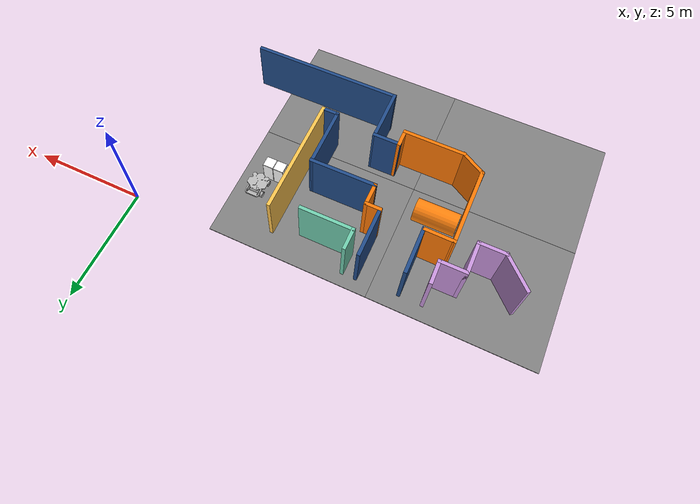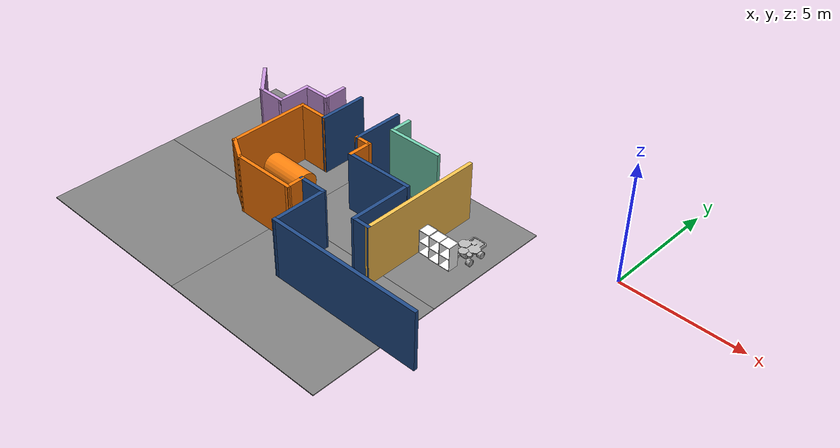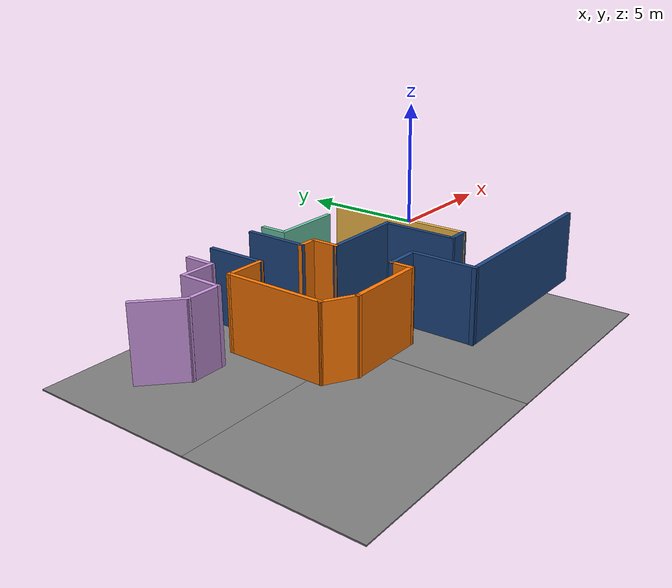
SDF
<sdf version="1.7">
 <world name="default">
  <model name="among_us_world">
   <pose>0.133216 -0.12311 0 0 -0 0</pose>
   <link name="Wall_145">
    <collision name="Wall_145_Collision">
     <geometry><box><size>5.25 0.15 2.5</size></box></geometry>
     <pose>0 0 1.25 0 -0 0</pose>
    </collision>
    <visual name="Wall_145_Visual">
     <pose>0 0 1.25 0 -0 0</pose>
     <geometry><box><size>5.25 0.15 2.5</size></box></geometry>
     <material>
      <ambient>1 0.764706 0.305882 1</ambient>
      <diffuse>1 0.764706 0.305882 1</diffuse>
      <specular>0.08 0.08 0.08 1</specular>
      <emissive>0 0 0 1</emissive>
      <pbr>
       <metal>
        <albedo_map>model://among_us_world/materials/textures/ceiling_tiled_255_195_78.jpg</albedo_map>
        <roughness>0.85</roughness>
        <metalness>0</metalness>
       </metal>
      </pbr>
     </material>
     <meta><layer>0</layer></meta>
    </visual>
    <pose>-6.21277 -3.45528 0 0 -0 1.5708</pose>
   </link>
   <link name="Wall_160">
    <collision name="Wall_160_Collision">
     <geometry><box><size>0.797757 0.15 2.5</size></box></geometry>
     <pose>0 0 1.25 0 -0 0</pose>
    </collision>
    <visual name="Wall_160_Visual">
     <pose>0 0 1.25 0 -0 0</pose>
     <geometry><box><size>0.797757 0.15 2.5</size></box></geometry>
     <material>
      <ambient>0.12549 0.290196 0.529412 1</ambient>
      <diffuse>0.12549 0.290196 0.529412 1</diffuse>
      <specular>0.08 0.08 0.08 1</specular>
      <emissive>0 0 0 1</emissive>
      <pbr>
       <metal>
        <albedo_map>model://asphalt_plane/materials/textures/tarmac.png</albedo_map>
        <roughness>0.85</roughness>
        <metalness>0</metalness>
       </metal>
      </pbr>
     </material>
     <meta><layer>0</layer></meta>
    </visual>
    <pose>-6.53682 -6.00509 0 0 -0 3.14101</pose>
   </link>
   <link name="Wall_161">
    <collision name="Wall_161_Collision">
     <geometry><box><size>2.70224 0.15 2.5</size></box></geometry>
     <pose>0 0 1.25 0 -0 0</pose>
    </collision>
    <visual name="Wall_161_Visual">
     <pose>0 0 1.25 0 -0 0</pose>
     <geometry><box><size>2.70224 0.15 2.5</size></box></geometry>
     <material>
      <ambient>0.12549 0.290196 0.529412 1</ambient>
      <diffuse>0.12549 0.290196 0.529412 1</diffuse>
      <specular>0.08 0.08 0.08 1</specular>
      <emissive>0 0 0 1</emissive>
      <pbr>
       <metal>
        <albedo_map>model://asphalt_plane/materials/textures/tarmac.png</albedo_map>
        <roughness>0.85</roughness>
        <metalness>0</metalness>
       </metal>
      </pbr>
     </material>
     <meta><layer>0</layer></meta>
    </visual>
    <pose>-6.87644 -4.72879 0 0 -0 1.5708</pose>
   </link>
   <link name="Wall_162">
    <collision name="Wall_162_Collision">
     <geometry><box><size>2.95229 0.15 2.5</size></box></geometry>
     <pose>0 0 1.25 0 -0 0</pose>
    </collision>
    <visual name="Wall_162_Visual">
     <pose>0 0 1.25 0 -0 0</pose>
     <geometry><box><size>2.95229 0.15 2.5</size></box></geometry>
     <material>
      <ambient>0.12549 0.290196 0.529412 1</ambient>
      <diffuse>0.12549 0.290196 0.529412 1</diffuse>
      <specular>0.08 0.08 0.08 1</specular>
      <emissive>0 0 0 1</emissive>
      <pbr>
       <metal>
        <albedo_map>model://asphalt_plane/materials/textures/tarmac.png</albedo_map>
        <roughness>0.85</roughness>
        <metalness>0</metalness>
       </metal>
      </pbr>
     </material>
     <meta><layer>0</layer></meta>
    </visual>
    <pose>-8.262 -3.46044 0 0 -0 -3.13604</pose>
   </link>
   <link name="Wall_163">
    <collision name="Wall_163_Collision">
     <geometry><box><size>1.04776 0.15 2.5</size></box></geometry>
     <pose>0 0 1.25 0 -0 0</pose>
    </collision>
    <visual name="Wall_163_Visual">
     <pose>0 0 1.25 0 -0 0</pose>
     <geometry><box><size>1.04776 0.15 2.5</size></box></geometry>
     <material>
      <ambient>0.996078 0.47451 0.0196078 1</ambient>
      <diffuse>0.996078 0.47451 0.0196078 1</diffuse>
      <specular>0.08 0.08 0.08 1</specular>
      <emissive>0 0 0 1</emissive>
      <pbr>
       <metal>
        <albedo_map>model://among_us_world/materials/textures/ceiling_tiled_254_121_5.jpg</albedo_map>
        <roughness>0.85</roughness>
        <metalness>0</metalness>
       </metal>
      </pbr>
     </material>
     <meta><layer>0</layer></meta>
    </visual>
    <pose>-9.66312 -3.00378 0 0 -0 1.5708</pose>
   </link>
   <link name="Wall_164">
    <collision name="Wall_164_Collision">
     <geometry><box><size>0.75 0.15 2.5</size></box></geometry>
     <pose>0 0 1.25 0 -0 0</pose>
    </collision>
    <visual name="Wall_164_Visual">
     <pose>0 0 1.25 0 -0 0</pose>
     <geometry><box><size>0.75 0.15 2.5</size></box></geometry>
     <material>
      <ambient>0.996078 0.47451 0.0196078 1</ambient>
      <diffuse>0.996078 0.47451 0.0196078 1</diffuse>
      <specular>0.08 0.08 0.08 1</specular>
      <emissive>0 0 0 1</emissive>
      <pbr>
       <metal>
        <albedo_map>model://among_us_world/materials/textures/ceiling_tiled_254_121_5.jpg</albedo_map>
        <roughness>0.85</roughness>
        <metalness>0</metalness>
       </metal>
      </pbr>
     </material>
     <meta><layer>0</layer></meta>
    </visual>
    <pose>-9.96312 -2.55491 0 0 -0 3.14159</pose>
   </link>
   <link name="Wall_165">
    <collision name="Wall_165_Collision">
     <geometry><box><size>2.25 0.15 2.5</size></box></geometry>
     <pose>0 0 1.25 0 -0 0</pose>
    </collision>
    <visual name="Wall_165_Visual">
     <pose>0 0 1.25 0 -0 0</pose>
     <geometry><box><size>2.25 0.15 2.5</size></box></geometry>
     <material>
      <ambient>0.12549 0.290196 0.529412 1</ambient>
      <diffuse>0.12549 0.290196 0.529412 1</diffuse>
      <specular>0.08 0.08 0.08 1</specular>
      <emissive>0 0 0 1</emissive>
      <pbr>
       <metal>
        <albedo_map>model://asphalt_plane/materials/textures/tarmac.png</albedo_map>
        <roughness>0.85</roughness>
        <metalness>0</metalness>
       </metal>
      </pbr>
     </material>
     <meta><layer>0</layer></meta>
    </visual>
    <pose>-10.2631 -1.50491 0 0 -0 1.5708</pose>
   </link>
   <link name="Wall_167">
    <collision name="Wall_167_Collision">
     <geometry><box><size>1 0.15 2.5</size></box></geometry>
     <pose>0 0 1.25 0 -0 0</pose>
    </collision>
    <visual name="Wall_167_Visual">
     <pose>0 0 1.25 0 -0 0</pose>
     <geometry><box><size>1 0.15 2.5</size></box></geometry>
     <material>
      <ambient>0.435294 0.796078 0.67451 1</ambient>
      <diffuse>0.435294 0.796078 0.67451 1</diffuse>
      <specular>0.08 0.08 0.08 1</specular>
      <emissive>0 0 0 1</emissive>
      <pbr>
       <metal>
        <albedo_map>model://among_us_world/materials/textures/ceiling_tiled_111_203_172.jpg</albedo_map>
        <roughness>0.85</roughness>
        <metalness>0</metalness>
       </metal>
      </pbr>
     </material>
     <meta><layer>0</layer></meta>
    </visual>
    <pose>-9.66312 -0.879906 0 0 -0 -1.5708</pose>
   </link>
   <link name="Wall_168">
    <collision name="Wall_168_Collision">
     <geometry><box><size>2.40666 0.15 2.5</size></box></geometry>
     <pose>0 0 1.25 0 -0 0</pose>
    </collision>
    <visual name="Wall_168_Visual">
     <pose>0 0 1.25 0 -0 0</pose>
     <geometry><box><size>2.40666 0.15 2.5</size></box></geometry>
     <material>
      <ambient>0.435294 0.796078 0.67451 1</ambient>
      <diffuse>0.435294 0.796078 0.67451 1</diffuse>
      <specular>0.08 0.08 0.08 1</specular>
      <emissive>0 0 0 1</emissive>
      <pbr>
       <metal>
        <albedo_map>model://among_us_world/materials/textures/ceiling_tiled_111_203_172.jpg</albedo_map>
        <roughness>0.85</roughness>
        <metalness>0</metalness>
       </metal>
      </pbr>
     </material>
     <meta><layer>0</layer></meta>
    </visual>
    <pose>-8.53479 -1.30491 0 0 -0 0</pose>
   </link>
   <link name="Wall_47">
    <collision name="Wall_47_Collision">
     <geometry><box><size>1.7065 0.15 2.5</size></box></geometry>
     <pose>0 0 1.25 0 -0 0</pose>
    </collision>
    <visual name="Wall_47_Visual">
     <pose>0 0 1.25 0 -0 0</pose>
     <geometry><box><size>1.7065 0.15 2.5</size></box></geometry>
     <material>
      <ambient>0.78 0.58 0.86 1</ambient>
      <diffuse>0.78 0.58 0.86 1</diffuse>
      <specular>0.08 0.08 0.08 1</specular>
      <emissive>0 0 0 1</emissive>
      <pbr>
       <metal>
        <albedo_map>model://among_us_world/materials/textures/ceiling_tiled_92_53_102.jpg</albedo_map>
        <roughness>0.85</roughness>
        <metalness>0</metalness>
       </metal>
      </pbr>
     </material>
     <meta><layer>0</layer></meta>
    </visual>
    <pose>-15.8858 -2.28678 0 0 -0 -0.771315</pose>
   </link>
   <link name="Wall_48">
    <collision name="Wall_48_Collision">
     <geometry><box><size>1.266 0.15 2.5</size></box></geometry>
     <pose>0 0 1.25 0 -0 0</pose>
    </collision>
    <visual name="Wall_48_Visual">
     <pose>0 0 1.25 0 -0 0</pose>
     <geometry><box><size>1.266 0.15 2.5</size></box></geometry>
     <material>
      <ambient>0.78 0.58 0.86 1</ambient>
      <diffuse>0.78 0.58 0.86 1</diffuse>
      <specular>0.08 0.08 0.08 1</specular>
      <emissive>0 0 0 1</emissive>
      <pbr>
       <metal>
        <albedo_map>model://among_us_world/materials/textures/ceiling_tiled_173_127_168.jpg</albedo_map>
        <roughness>0.85</roughness>
        <metalness>0</metalness>
       </metal>
      </pbr>
     </material>
     <meta><layer>0</layer></meta>
    </visual>
    <pose>-14.7698 -2.82928 0 0 -0 0</pose>
   </link>
   <link name="Wall_49">
    <collision name="Wall_49_Collision">
     <geometry><box><size>1.5 0.15 2.5</size></box></geometry>
     <pose>0 0 1.25 0 -0 0</pose>
    </collision>
    <visual name="Wall_49_Visual">
     <pose>0 0 1.25 0 -0 0</pose>
     <geometry><box><size>1.5 0.15 2.5</size></box></geometry>
     <material>
      <ambient>0.78 0.58 0.86 1</ambient>
      <diffuse>0.78 0.58 0.86 1</diffuse>
      <specular>0.08 0.08 0.08 1</specular>
      <emissive>0 0 0 1</emissive>
      <pbr>
       <metal>
        <albedo_map>model://among_us_world/materials/textures/ceiling_tiled_117_80_123.jpg</albedo_map>
        <roughness>0.85</roughness>
        <metalness>0</metalness>
       </metal>
      </pbr>
     </material>
     <meta><layer>0</layer></meta>
    </visual>
    <pose>-14.2118 -2.15428 0 0 -0 1.5708</pose>
   </link>
   <link name="Wall_50">
    <collision name="Wall_50_Collision">
     <geometry><box><size>1.25 0.15 2.5</size></box></geometry>
     <pose>0 0 1.25 0 -0 0</pose>
    </collision>
    <visual name="Wall_50_Visual">
     <pose>0 0 1.25 0 -0 0</pose>
     <geometry><box><size>1.25 0.15 2.5</size></box></geometry>
     <material>
      <ambient>0.78 0.58 0.86 1</ambient>
      <diffuse>0.78 0.58 0.86 1</diffuse>
      <specular>0.08 0.08 0.08 1</specular>
      <emissive>0 0 0 1</emissive>
      <pbr>
       <metal>
        <albedo_map>model://among_us_world/materials/textures/ceiling_tiled_117_80_123.jpg</albedo_map>
        <roughness>0.85</roughness>
        <metalness>0</metalness>
       </metal>
      </pbr>
     </material>
     <meta><layer>0</layer></meta>
    </visual>
    <pose>-13.6618 -1.47928 0 0 -0 0</pose>
   </link>
   <link name="Wall_51">
    <collision name="Wall_51_Collision">
     <geometry><box><size>1.07621 0.15 2.5</size></box></geometry>
     <pose>0 0 1.25 0 -0 0</pose>
    </collision>
    <visual name="Wall_51_Visual">
     <pose>0 0 1.25 0 -0 0</pose>
     <geometry><box><size>1.07621 0.15 2.5</size></box></geometry>
     <material>
      <ambient>0.78 0.58 0.86 1</ambient>
      <diffuse>0.78 0.58 0.86 1</diffuse>
      <specular>0.08 0.08 0.08 1</specular>
      <emissive>0 0 0 1</emissive>
      <pbr>
       <metal>
        <albedo_map>model://among_us_world/materials/textures/ceiling_tiled_117_80_123.jpg</albedo_map>
        <roughness>0.85</roughness>
        <metalness>0</metalness>
       </metal>
      </pbr>
     </material>
     <meta><layer>0</layer></meta>
    </visual>
    <pose>-13.1188 -1.01578 0 0 -0 1.5859</pose>
   </link>
   <link name="Wall_53">
    <collision name="Wall_53_Collision">
     <geometry><box><size>2.08956 0.15 2.5</size></box></geometry>
     <pose>0 0 1.25 0 -0 0</pose>
    </collision>
    <visual name="Wall_53_Visual">
     <pose>0 0 1.25 0 -0 0</pose>
     <geometry><box><size>2.08956 0.15 2.5</size></box></geometry>
     <material>
      <ambient>0.12549 0.290196 0.529412 1</ambient>
      <diffuse>0.12549 0.290196 0.529412 1</diffuse>
      <specular>0.08 0.08 0.08 1</specular>
      <emissive>0 0 0 1</emissive>
      <pbr>
       <metal>
        <albedo_map>model://asphalt_plane/materials/textures/tarmac.png</albedo_map>
        <roughness>0.85</roughness>
        <metalness>0</metalness>
       </metal>
      </pbr>
     </material>
     <meta><layer>0</layer></meta>
    </visual>
    <pose>-12.1122 -1.5246 0 0 -0 -1.56365</pose>
   </link>
   <link name="Wall_54">
    <collision name="Wall_54_Collision">
     <geometry><box><size>1.3912 0.15 2.5</size></box></geometry>
     <pose>0 0 1.25 0 -0 0</pose>
    </collision>
    <visual name="Wall_54_Visual">
     <pose>0 0 1.25 0 -0 0</pose>
     <geometry><box><size>1.3912 0.15 2.5</size></box></geometry>
     <material>
      <ambient>0.996078 0.47451 0.0196078 1</ambient>
      <diffuse>0.996078 0.47451 0.0196078 1</diffuse>
      <specular>0.08 0.08 0.08 1</specular>
      <emissive>0 0 0 1</emissive>
      <pbr>
       <metal>
        <albedo_map>model://among_us_world/materials/textures/ceiling_tiled_254_121_5.jpg</albedo_map>
        <roughness>0.85</roughness>
        <metalness>0</metalness>
       </metal>
      </pbr>
     </material>
     <meta><layer>0</layer></meta>
    </visual>
    <pose>-12.7414 -2.48657 0 0 -0 3.12906</pose>
   </link>
   <link name="Wall_55">
    <collision name="Wall_55_Collision">
     <geometry><box><size>3.5 0.15 2.5</size></box></geometry>
     <pose>0 0 1.25 0 -0 0</pose>
    </collision>
    <visual name="Wall_55_Visual">
     <pose>0 0 1.25 0 -0 0</pose>
     <geometry><box><size>3.5 0.15 2.5</size></box></geometry>
     <material>
      <ambient>0.996078 0.47451 0.0196078 1</ambient>
      <diffuse>0.996078 0.47451 0.0196078 1</diffuse>
      <specular>0.08 0.08 0.08 1</specular>
      <emissive>0 0 0 1</emissive>
      <pbr>
       <metal>
        <albedo_map>model://among_us_world/materials/textures/ceiling_tiled_254_121_5.jpg</albedo_map>
        <roughness>0.85</roughness>
        <metalness>0</metalness>
       </metal>
      </pbr>
     </material>
     <meta><layer>0</layer></meta>
    </visual>
    <pose>-13.3619 -4.15379 0 0 -0 -1.5708</pose>
   </link>
   <link name="Wall_56">
    <collision name="Wall_56_Collision">
     <geometry><box><size>1.25 0.15 2.5</size></box></geometry>
     <pose>0 0 1.25 0 -0 0</pose>
    </collision>
    <visual name="Wall_56_Visual">
     <pose>0 0 1.25 0 -0 0</pose>
     <geometry><box><size>1.25 0.15 2.5</size></box></geometry>
     <material>
      <ambient>0.996078 0.47451 0.0196078 1</ambient>
      <diffuse>0.996078 0.47451 0.0196078 1</diffuse>
      <specular>0.08 0.08 0.08 1</specular>
      <emissive>0 0 0 1</emissive>
      <pbr>
       <metal>
        <albedo_map>model://among_us_world/materials/textures/ceiling_tiled_254_121_5.jpg</albedo_map>
        <roughness>0.85</roughness>
        <metalness>0</metalness>
       </metal>
      </pbr>
     </material>
     <meta><layer>0</layer></meta>
    </visual>
    <pose>-12.8856 -6.10379 0 0 -0 -0.523599</pose>
   </link>
   <link name="Wall_57">
    <collision name="Wall_57_Collision">
     <geometry><box><size>2.75 0.15 2.5</size></box></geometry>
     <pose>0 0 1.25 0 -0 0</pose>
    </collision>
    <visual name="Wall_57_Visual">
     <pose>0 0 1.25 0 -0 0</pose>
     <geometry><box><size>2.75 0.15 2.5</size></box></geometry>
     <material>
      <ambient>0.996078 0.47451 0.0196078 1</ambient>
      <diffuse>0.996078 0.47451 0.0196078 1</diffuse>
      <specular>0.08 0.08 0.08 1</specular>
      <emissive>0 0 0 1</emissive>
      <pbr>
       <metal>
        <albedo_map>model://among_us_world/materials/textures/ceiling_tiled_254_121_5.jpg</albedo_map>
        <roughness>0.85</roughness>
        <metalness>0</metalness>
       </metal>
      </pbr>
     </material>
     <meta><layer>0</layer></meta>
    </visual>
    <pose>-11.1093 -6.37879 0 0 -0 0</pose>
   </link>
   <link name="Wall_58">
    <collision name="Wall_58_Collision">
     <geometry><box><size>0.828826 0.15 2.5</size></box></geometry>
     <pose>0 0 1.25 0 -0 0</pose>
    </collision>
    <visual name="Wall_58_Visual">
     <pose>0 0 1.25 0 -0 0</pose>
     <geometry><box><size>0.828826 0.15 2.5</size></box></geometry>
     <material>
      <ambient>0.996078 0.47451 0.0196078 1</ambient>
      <diffuse>0.996078 0.47451 0.0196078 1</diffuse>
      <specular>0.08 0.08 0.08 1</specular>
      <emissive>0 0 0 1</emissive>
      <pbr><metal><roughness>0.85</roughness><metalness>0</metalness></metal></pbr>
     </material>
     <meta><layer>0</layer></meta>
    </visual>
    <pose>-9.81221 -6.03984 0 0 -0 1.57942</pose>
   </link>
   <link name="Wall_59">
    <collision name="Wall_59_Collision">
     <geometry><box><size>1.25 0.15 2.5</size></box></geometry>
     <pose>0 0 1.25 0 -0 0</pose>
    </collision>
    <visual name="Wall_59_Visual">
     <pose>0 0 1.25 0 -0 0</pose>
     <geometry><box><size>1.25 0.15 2.5</size></box></geometry>
     <material>
      <ambient>0.12549 0.290196 0.529412 1</ambient>
      <diffuse>0.12549 0.290196 0.529412 1</diffuse>
      <specular>0.08 0.08 0.08 1</specular>
      <emissive>0 0 0 1</emissive>
      <pbr>
       <metal>
        <albedo_map>model://asphalt_plane/materials/textures/tarmac.png</albedo_map>
        <roughness>0.85</roughness>
        <metalness>0</metalness>
       </metal>
      </pbr>
     </material>
     <meta><layer>0</layer></meta>
    </visual>
    <pose>-9.27098 -5.70088 0 0 -0 0</pose>
   </link>
   <link name="Wall_60">
    <collision name="Wall_60_Collision">
     <geometry><box><size>2.3556 0.15 2.5</size></box></geometry>
     <pose>0 0 1.25 0 -0 0</pose>
    </collision>
    <visual name="Wall_60_Visual">
     <pose>0 0 1.25 0 -0 0</pose>
     <geometry><box><size>2.3556 0.15 2.5</size></box></geometry>
     <material>
      <ambient>0.12549 0.290196 0.529412 1</ambient>
      <diffuse>0.12549 0.290196 0.529412 1</diffuse>
      <specular>0.08 0.08 0.08 1</specular>
      <emissive>0 0 0 1</emissive>
      <pbr>
       <metal>
        <albedo_map>model://asphalt_plane/materials/textures/tarmac.png</albedo_map>
        <roughness>0.85</roughness>
        <metalness>0</metalness>
       </metal>
      </pbr>
     </material>
     <meta><layer>0</layer></meta>
    </visual>
    <pose>-8.71756 -6.80367 0 0 -0 -1.56769</pose>
   </link>
   <link name="Wall_61">
    <collision name="Wall_61_Collision">
     <geometry><box><size>6.57551 0.15 2.5</size></box></geometry>
     <pose>0 0 1.25 0 -0 0</pose>
    </collision>
    <visual name="Wall_61_Visual">
     <pose>0 0 1.25 0 -0 0</pose>
     <geometry><box><size>6.57551 0.15 2.5</size></box></geometry>
     <material>
      <ambient>0.12549 0.290196 0.529412 1</ambient>
      <diffuse>0.12549 0.290196 0.529412 1</diffuse>
      <specular>0.08 0.08 0.08 1</specular>
      <emissive>0 0 0 1</emissive>
      <pbr>
       <metal>
        <albedo_map>model://asphalt_plane/materials/textures/tarmac.png</albedo_map>
        <roughness>0.85</roughness>
        <metalness>0</metalness>
       </metal>
      </pbr>
     </material>
     <meta><layer>0</layer></meta>
    </visual>
    <pose>-5.51319 -7.89091 0 0 -0 0.004842</pose>
   </link>
   <static>1</static>
  </model>
  <model name="cabinet_clone">
   <static>1</static>
   <link name="cabinet_bottom_plate">
    <inertial>
     <pose>0 0 -1 0 -0 0</pose>
     <inertia><ixx>2.05</ixx><ixy>0</ixy><ixz>0</ixz><iyy>2.05</iyy><iyz>0</iyz><izz>2.05</izz></inertia>
     <mass>25</mass>
    </inertial>
    <collision name="cabinet_bottom_plate_geom">
     <pose>0 0 0.01 0 -0 0</pose>
     <geometry><box><size>0.45 0.45 0.02</size></box></geometry>
    </collision>
    <visual name="cabinet_bottom_plate_geom_visual">
     <pose>0 0 0.01 0 -0 0</pose>
     <geometry><box><size>0.45 0.45 0.02</size></box></geometry>
     <material>
      <ambient>1 1 1 1</ambient>
      <diffuse>1 1 1 1</diffuse>
      <specular>0.08 0.08 0.08 1</specular>
      <emissive>0 0 0 1</emissive>
      <pbr>
       <metal>
        <albedo_map>model://among_us_world/materials/textures/legacy_wood.jpg</albedo_map>
        <roughness>0.62</roughness>
        <metalness>0</metalness>
       </metal>
      </pbr>
     </material>
    </visual>
    <collision name="cabinet_bottom_plate_geom_cabinet_back_plate">
     <pose>0.235 0 0.51 0 -0 0</pose>
     <geometry><box><size>0.02 0.45 1.02</size></box></geometry>
    </collision>
    <visual name="cabinet_bottom_plate_geom_cabinet_back_plate_visual">
     <pose>0.235 0 0.51 0 -0 0</pose>
     <geometry><box><size>0.02 0.45 1.02</size></box></geometry>
     <material>
      <ambient>1 1 1 1</ambient>
      <diffuse>1 1 1 1</diffuse>
      <specular>0.08 0.08 0.08 1</specular>
      <emissive>0 0 0 1</emissive>
      <pbr>
       <metal>
        <albedo_map>model://among_us_world/materials/textures/legacy_wood.jpg</albedo_map>
        <roughness>0.62</roughness>
        <metalness>0</metalness>
       </metal>
      </pbr>
     </material>
    </visual>
    <collision name="cabinet_bottom_plate_geom_cabinet_left_plate">
     <pose>0 0.235 0.51 0 -0 0</pose>
     <geometry><box><size>0.45 0.02 1.02</size></box></geometry>
    </collision>
    <visual name="cabinet_bottom_plate_geom_cabinet_left_plate_visual">
     <pose>0 0.235 0.51 0 -0 0</pose>
     <geometry><box><size>0.45 0.02 1.02</size></box></geometry>
     <material>
      <ambient>1 1 1 1</ambient>
      <diffuse>1 1 1 1</diffuse>
      <specular>0.08 0.08 0.08 1</specular>
      <emissive>0 0 0 1</emissive>
      <pbr>
       <metal>
        <albedo_map>model://among_us_world/materials/textures/legacy_wood.jpg</albedo_map>
        <roughness>0.62</roughness>
        <metalness>0</metalness>
       </metal>
      </pbr>
     </material>
    </visual>
    <collision name="cabinet_bottom_plate_geom_cabinet_middle_plate">
     <pose>0 0 0.51 0 -0 0</pose>
     <geometry><box><size>0.45 0.45 0.02</size></box></geometry>
    </collision>
    <visual name="cabinet_bottom_plate_geom_cabinet_middle_plate_visual">
     <pose>0 0 0.51 0 -0 0</pose>
     <geometry><box><size>0.45 0.45 0.02</size></box></geometry>
     <material>
      <ambient>1 1 1 1</ambient>
      <diffuse>1 1 1 1</diffuse>
      <specular>0.08 0.08 0.08 1</specular>
      <emissive>0 0 0 1</emissive>
      <pbr>
       <metal>
        <albedo_map>model://among_us_world/materials/textures/legacy_wood.jpg</albedo_map>
        <roughness>0.62</roughness>
        <metalness>0</metalness>
       </metal>
      </pbr>
     </material>
    </visual>
    <collision name="cabinet_bottom_plate_geom_cabinet_right_plate">
     <pose>0 -0.235 0.51 0 -0 0</pose>
     <geometry><box><size>0.45 0.02 1.02</size></box></geometry>
    </collision>
    <visual name="cabinet_bottom_plate_geom_cabinet_right_plate_visual">
     <pose>0 -0.235 0.51 0 -0 0</pose>
     <geometry><box><size>0.45 0.02 1.02</size></box></geometry>
     <material>
      <ambient>1 1 1 1</ambient>
      <diffuse>1 1 1 1</diffuse>
      <specular>0.08 0.08 0.08 1</specular>
      <emissive>0 0 0 1</emissive>
      <pbr>
       <metal>
        <albedo_map>model://among_us_world/materials/textures/legacy_wood.jpg</albedo_map>
        <roughness>0.62</roughness>
        <metalness>0</metalness>
       </metal>
      </pbr>
     </material>
    </visual>
    <collision name="cabinet_bottom_plate_geom_cabinet_top_plate">
     <pose>0 0 1.01 0 -0 0</pose>
     <geometry><box><size>0.45 0.45 0.02</size></box></geometry>
    </collision>
    <visual name="cabinet_bottom_plate_geom_cabinet_top_plate_visual">
     <pose>0 0 1.01 0 -0 0</pose>
     <geometry><box><size>0.45 0.45 0.02</size></box></geometry>
     <material>
      <ambient>1 1 1 1</ambient>
      <diffuse>1 1 1 1</diffuse>
      <specular>0.08 0.08 0.08 1</specular>
      <emissive>0 0 0 1</emissive>
      <pbr>
       <metal>
        <albedo_map>model://among_us_world/materials/textures/legacy_wood.jpg</albedo_map>
        <roughness>0.62</roughness>
        <metalness>0</metalness>
       </metal>
      </pbr>
     </material>
    </visual>
   </link>
   <pose>-5.25916 -3.50994 0 0 -0 1.57</pose>
  </model>
  <model name="cabinet_clone_0">
   <static>1</static>
   <link name="cabinet_bottom_plate">
    <inertial>
     <pose>0 0 -1 0 -0 0</pose>
     <inertia><ixx>2.05</ixx><ixy>0</ixy><ixz>0</ixz><iyy>2.05</iyy><iyz>0</iyz><izz>2.05</izz></inertia>
     <mass>25</mass>
    </inertial>
    <collision name="cabinet_bottom_plate_geom">
     <pose>0 0 0.01 0 -0 0</pose>
     <geometry><box><size>0.45 0.45 0.02</size></box></geometry>
    </collision>
    <visual name="cabinet_bottom_plate_geom_visual">
     <pose>0 0 0.01 0 -0 0</pose>
     <geometry><box><size>0.45 0.45 0.02</size></box></geometry>
     <material>
      <ambient>1 1 1 1</ambient>
      <diffuse>1 1 1 1</diffuse>
      <specular>0.08 0.08 0.08 1</specular>
      <emissive>0 0 0 1</emissive>
      <pbr>
       <metal>
        <albedo_map>model://among_us_world/materials/textures/legacy_wood.jpg</albedo_map>
        <roughness>0.62</roughness>
        <metalness>0</metalness>
       </metal>
      </pbr>
     </material>
    </visual>
    <collision name="cabinet_bottom_plate_geom_cabinet_back_plate">
     <pose>0.235 0 0.51 0 -0 0</pose>
     <geometry><box><size>0.02 0.45 1.02</size></box></geometry>
    </collision>
    <visual name="cabinet_bottom_plate_geom_cabinet_back_plate_visual">
     <pose>0.235 0 0.51 0 -0 0</pose>
     <geometry><box><size>0.02 0.45 1.02</size></box></geometry>
     <material>
      <ambient>1 1 1 1</ambient>
      <diffuse>1 1 1 1</diffuse>
      <specular>0.08 0.08 0.08 1</specular>
      <emissive>0 0 0 1</emissive>
      <pbr>
       <metal>
        <albedo_map>model://among_us_world/materials/textures/legacy_wood.jpg</albedo_map>
        <roughness>0.62</roughness>
        <metalness>0</metalness>
       </metal>
      </pbr>
     </material>
    </visual>
    <collision name="cabinet_bottom_plate_geom_cabinet_left_plate">
     <pose>0 0.235 0.51 0 -0 0</pose>
     <geometry><box><size>0.45 0.02 1.02</size></box></geometry>
    </collision>
    <visual name="cabinet_bottom_plate_geom_cabinet_left_plate_visual">
     <pose>0 0.235 0.51 0 -0 0</pose>
     <geometry><box><size>0.45 0.02 1.02</size></box></geometry>
     <material>
      <ambient>1 1 1 1</ambient>
      <diffuse>1 1 1 1</diffuse>
      <specular>0.08 0.08 0.08 1</specular>
      <emissive>0 0 0 1</emissive>
      <pbr>
       <metal>
        <albedo_map>model://among_us_world/materials/textures/legacy_wood.jpg</albedo_map>
        <roughness>0.62</roughness>
        <metalness>0</metalness>
       </metal>
      </pbr>
     </material>
    </visual>
    <collision name="cabinet_bottom_plate_geom_cabinet_middle_plate">
     <pose>0 0 0.51 0 -0 0</pose>
     <geometry><box><size>0.45 0.45 0.02</size></box></geometry>
    </collision>
    <visual name="cabinet_bottom_plate_geom_cabinet_middle_plate_visual">
     <pose>0 0 0.51 0 -0 0</pose>
     <geometry><box><size>0.45 0.45 0.02</size></box></geometry>
     <material>
      <ambient>1 1 1 1</ambient>
      <diffuse>1 1 1 1</diffuse>
      <specular>0.08 0.08 0.08 1</specular>
      <emissive>0 0 0 1</emissive>
      <pbr>
       <metal>
        <albedo_map>model://among_us_world/materials/textures/legacy_wood.jpg</albedo_map>
        <roughness>0.62</roughness>
        <metalness>0</metalness>
       </metal>
      </pbr>
     </material>
    </visual>
    <collision name="cabinet_bottom_plate_geom_cabinet_right_plate">
     <pose>0 -0.235 0.51 0 -0 0</pose>
     <geometry><box><size>0.45 0.02 1.02</size></box></geometry>
    </collision>
    <visual name="cabinet_bottom_plate_geom_cabinet_right_plate_visual">
     <pose>0 -0.235 0.51 0 -0 0</pose>
     <geometry><box><size>0.45 0.02 1.02</size></box></geometry>
     <material>
      <ambient>1 1 1 1</ambient>
      <diffuse>1 1 1 1</diffuse>
      <specular>0.08 0.08 0.08 1</specular>
      <emissive>0 0 0 1</emissive>
      <pbr>
       <metal>
        <albedo_map>model://among_us_world/materials/textures/legacy_wood.jpg</albedo_map>
        <roughness>0.62</roughness>
        <metalness>0</metalness>
       </metal>
      </pbr>
     </material>
    </visual>
    <collision name="cabinet_bottom_plate_geom_cabinet_top_plate">
     <pose>0 0 1.01 0 -0 0</pose>
     <geometry><box><size>0.45 0.45 0.02</size></box></geometry>
    </collision>
    <visual name="cabinet_bottom_plate_geom_cabinet_top_plate_visual">
     <pose>0 0 1.01 0 -0 0</pose>
     <geometry><box><size>0.45 0.45 0.02</size></box></geometry>
     <material>
      <ambient>1 1 1 1</ambient>
      <diffuse>1 1 1 1</diffuse>
      <specular>0.08 0.08 0.08 1</specular>
      <emissive>0 0 0 1</emissive>
      <pbr>
       <metal>
        <albedo_map>model://among_us_world/materials/textures/legacy_wood.jpg</albedo_map>
        <roughness>0.62</roughness>
        <metalness>0</metalness>
       </metal>
      </pbr>
     </material>
    </visual>
   </link>
   <pose>-4.77375 -3.5118 0 0 -0 1.57</pose>
  </model>
  <model name="mars_rover">
   <static>1</static>
   <link name="link">
    <collision name="solar_panel_collision">
     <pose>0 -0.06945 0.47293 0 -0 0</pose>
     <geometry><box><size>0.87974 0.8821 0.02602</size></box></geometry>
    </collision>
    <collision name="chassis_collision">
     <pose>0 -0.05 0.31475 0 -0 0</pose>
     <geometry><box><size>0.49522 0.67401 0.28915</size></box></geometry>
    </collision>
    <collision name="rear_left_bumper_collision">
     <pose>0.30107 0.3835 0.38976 0 -0 0</pose>
     <geometry><box><size>0.04442 0.38897 0.07918</size></box></geometry>
    </collision>
    <collision name="rear_right_bumper_collision">
     <pose>-0.30107 0.3835 0.38976 0 -0 0</pose>
     <geometry><box><size>0.04442 0.38897 0.07918</size></box></geometry>
    </collision>
    <collision name="rear_bumper_collision">
     <pose>0 0.59414 0.38976 0 -0 0</pose>
     <geometry><box><size>0.56656 0.04442 0.07918</size></box></geometry>
    </collision>
    <collision name="bin_back_panel_collision">
     <pose>0 0.47 0.32114 0.69137 -0 0</pose>
     <geometry><box><size>0.43774 0.212366 0.05173</size></box></geometry>
    </collision>
    <collision name="bin_left_panel_collision1">
     <pose>0.22615 0.32897 0.33193 0 -0 0</pose>
     <geometry><box><size>0.01116 0.19338 0.16304</size></box></geometry>
    </collision>
    <collision name="bin_left_panel_collision2">
     <pose>0.22615 0.471 0.39308 0 -0 0</pose>
     <geometry><box><size>0.01116 0.15 0.04</size></box></geometry>
    </collision>
    <collision name="bin_left_panel_collision3">
     <pose>0.22615 0.45 0.35308 0 -0 0</pose>
     <geometry><box><size>0.01116 0.15 0.04</size></box></geometry>
    </collision>
    <collision name="bin_left_panel_collision4">
     <pose>0.22615 0.39308 0.31308 0 -0 0</pose>
     <geometry><box><size>0.01116 0.15 0.04</size></box></geometry>
    </collision>
    <collision name="bin_right_panel_collision1">
     <pose>-0.22615 0.32897 0.33193 0 -0 0</pose>
     <geometry><box><size>0.01116 0.19338 0.16304</size></box></geometry>
    </collision>
    <collision name="bin_right_panel_collision2">
     <pose>-0.22615 0.471 0.39308 0 -0 0</pose>
     <geometry><box><size>0.01116 0.15 0.04</size></box></geometry>
    </collision>
    <collision name="bin_right_panel_collision3">
     <pose>-0.22615 0.45 0.35308 0 -0 0</pose>
     <geometry><box><size>0.01116 0.15 0.04</size></box></geometry>
    </collision>
    <collision name="bin_right_panel_collision4">
     <pose>-0.22615 0.39308 0.31308 0 -0 0</pose>
     <geometry><box><size>0.01116 0.15 0.04</size></box></geometry>
    </collision>
    <collision name="bin_front_panel_collision">
     <pose>0 0.30047 0.32114 2.26207 -0 0</pose>
     <geometry><box><size>0.43774 0.212366 0.05173</size></box></geometry>
    </collision>
    <collision name="front_left_wheel_collision">
     <pose>0.31103 -0.32115 0.1358 1.5707 0 1.5707</pose>
     <geometry><cylinder><radius>0.1358</radius><length>0.1641</length></cylinder></geometry>
    </collision>
    <collision name="front_right_wheel_collision">
     <pose>-0.31103 -0.32115 0.1358 1.5707 0 1.5707</pose>
     <geometry><cylinder><radius>0.1358</radius><length>0.1641</length></cylinder></geometry>
    </collision>
    <collision name="rear_left_wheel_collision">
     <pose>0.31103 0.28049 0.1358 1.5707 0 1.5707</pose>
     <geometry><cylinder><radius>0.1358</radius><length>0.1641</length></cylinder></geometry>
    </collision>
    <collision name="rear_right_wheel_collision">
     <pose>-0.31103 0.28049 0.1358 1.5707 0 1.5707</pose>
     <geometry><cylinder><radius>0.1358</radius><length>0.1641</length></cylinder></geometry>
    </collision>
    <visual name="visual">
     <geometry><mesh><uri>model://mars_rover/meshes/rover.dae</uri></mesh></geometry>
    </visual>
   </link>
   <pose>-4.55317 -2.65606 0 0 -0 0</pose>
  </model>
  <model name="cabinet_clone_0_clone">
   <static>1</static>
   <link name="cabinet_bottom_plate">
    <inertial>
     <pose>0 0 -1 0 -0 0</pose>
     <inertia><ixx>2.05</ixx><ixy>0</ixy><ixz>0</ixz><iyy>2.05</iyy><iyz>0</iyz><izz>2.05</izz></inertia>
     <mass>25</mass>
    </inertial>
    <collision name="cabinet_bottom_plate_geom">
     <pose>0 0 0.01 0 -0 0</pose>
     <geometry><box><size>0.45 0.45 0.02</size></box></geometry>
    </collision>
    <visual name="cabinet_bottom_plate_geom_visual">
     <pose>0 0 0.01 0 -0 0</pose>
     <geometry><box><size>0.45 0.45 0.02</size></box></geometry>
     <material>
      <ambient>1 1 1 1</ambient>
      <diffuse>1 1 1 1</diffuse>
      <specular>0.08 0.08 0.08 1</specular>
      <emissive>0 0 0 1</emissive>
      <pbr>
       <metal>
        <albedo_map>model://among_us_world/materials/textures/legacy_wood.jpg</albedo_map>
        <roughness>0.62</roughness>
        <metalness>0</metalness>
       </metal>
      </pbr>
     </material>
    </visual>
    <collision name="cabinet_bottom_plate_geom_cabinet_back_plate">
     <pose>0.235 0 0.51 0 -0 0</pose>
     <geometry><box><size>0.02 0.45 1.02</size></box></geometry>
    </collision>
    <visual name="cabinet_bottom_plate_geom_cabinet_back_plate_visual">
     <pose>0.235 0 0.51 0 -0 0</pose>
     <geometry><box><size>0.02 0.45 1.02</size></box></geometry>
     <material>
      <ambient>1 1 1 1</ambient>
      <diffuse>1 1 1 1</diffuse>
      <specular>0.08 0.08 0.08 1</specular>
      <emissive>0 0 0 1</emissive>
      <pbr>
       <metal>
        <albedo_map>model://among_us_world/materials/textures/legacy_wood.jpg</albedo_map>
        <roughness>0.62</roughness>
        <metalness>0</metalness>
       </metal>
      </pbr>
     </material>
    </visual>
    <collision name="cabinet_bottom_plate_geom_cabinet_left_plate">
     <pose>0 0.235 0.51 0 -0 0</pose>
     <geometry><box><size>0.45 0.02 1.02</size></box></geometry>
    </collision>
    <visual name="cabinet_bottom_plate_geom_cabinet_left_plate_visual">
     <pose>0 0.235 0.51 0 -0 0</pose>
     <geometry><box><size>0.45 0.02 1.02</size></box></geometry>
     <material>
      <ambient>1 1 1 1</ambient>
      <diffuse>1 1 1 1</diffuse>
      <specular>0.08 0.08 0.08 1</specular>
      <emissive>0 0 0 1</emissive>
      <pbr>
       <metal>
        <albedo_map>model://among_us_world/materials/textures/legacy_wood.jpg</albedo_map>
        <roughness>0.62</roughness>
        <metalness>0</metalness>
       </metal>
      </pbr>
     </material>
    </visual>
    <collision name="cabinet_bottom_plate_geom_cabinet_middle_plate">
     <pose>0 0 0.51 0 -0 0</pose>
     <geometry><box><size>0.45 0.45 0.02</size></box></geometry>
    </collision>
    <visual name="cabinet_bottom_plate_geom_cabinet_middle_plate_visual">
     <pose>0 0 0.51 0 -0 0</pose>
     <geometry><box><size>0.45 0.45 0.02</size></box></geometry>
     <material>
      <ambient>1 1 1 1</ambient>
      <diffuse>1 1 1 1</diffuse>
      <specular>0.08 0.08 0.08 1</specular>
      <emissive>0 0 0 1</emissive>
      <pbr>
       <metal>
        <albedo_map>model://among_us_world/materials/textures/legacy_wood.jpg</albedo_map>
        <roughness>0.62</roughness>
        <metalness>0</metalness>
       </metal>
      </pbr>
     </material>
    </visual>
    <collision name="cabinet_bottom_plate_geom_cabinet_right_plate">
     <pose>0 -0.235 0.51 0 -0 0</pose>
     <geometry><box><size>0.45 0.02 1.02</size></box></geometry>
    </collision>
    <visual name="cabinet_bottom_plate_geom_cabinet_right_plate_visual">
     <pose>0 -0.235 0.51 0 -0 0</pose>
     <geometry><box><size>0.45 0.02 1.02</size></box></geometry>
     <material>
      <ambient>1 1 1 1</ambient>
      <diffuse>1 1 1 1</diffuse>
      <specular>0.08 0.08 0.08 1</specular>
      <emissive>0 0 0 1</emissive>
      <pbr>
       <metal>
        <albedo_map>model://among_us_world/materials/textures/legacy_wood.jpg</albedo_map>
        <roughness>0.62</roughness>
        <metalness>0</metalness>
       </metal>
      </pbr>
     </material>
    </visual>
    <collision name="cabinet_bottom_plate_geom_cabinet_top_plate">
     <pose>0 0 1.01 0 -0 0</pose>
     <geometry><box><size>0.45 0.45 0.02</size></box></geometry>
    </collision>
    <visual name="cabinet_bottom_plate_geom_cabinet_top_plate_visual">
     <pose>0 0 1.01 0 -0 0</pose>
     <geometry><box><size>0.45 0.45 0.02</size></box></geometry>
     <material>
      <ambient>1 1 1 1</ambient>
      <diffuse>1 1 1 1</diffuse>
      <specular>0.08 0.08 0.08 1</specular>
      <emissive>0 0 0 1</emissive>
      <pbr>
       <metal>
        <albedo_map>model://among_us_world/materials/textures/legacy_wood.jpg</albedo_map>
        <roughness>0.62</roughness>
        <metalness>0</metalness>
       </metal>
      </pbr>
     </material>
    </visual>
   </link>
   <pose>-5.75867 -3.48219 0 0 -0 1.57</pose>
  </model>
  <model name="orange_cylinder_clone_clone">
   <link name="link_0">
    <inertial>
     <mass>1</mass>
     <inertia><ixx>0.145833</ixx><ixy>0</ixy><ixz>0</ixz><iyy>0.145833</iyy><iyz>0</iyz><izz>0.125</izz></inertia>
    </inertial>
    <visual name="visual">
     <geometry><cylinder><radius>0.5</radius><length>1.88443</length></cylinder></geometry>
     <material>
      <ambient>1 0.5088 0.0468 1</ambient>
      <diffuse>1 0.5088 0.0468 1</diffuse>
      <specular>0.08 0.08 0.08 1</specular>
      <emissive>0 0 0 1</emissive>
      <pbr><metal><roughness>0.75</roughness><metalness>0</metalness></metal></pbr>
     </material>
    </visual>
    <collision name="collision">
     <geometry><cylinder><radius>0.5</radius><length>1.88443</length></cylinder></geometry>
     <surface>
      <friction>
       <ode><mu>1</mu><mu2>1</mu2><fdir1>0 0 0</fdir1><slip1>0</slip1><slip2>0</slip2></ode>
       <torsional>
        <coefficient>1</coefficient>
        <patch_radius>0</patch_radius>
        <surface_radius>0</surface_radius>
        <use_patch_radius>1</use_patch_radius>
        <ode><slip>0</slip></ode>
       </torsional>
      </friction>
      <bounce><restitution_coefficient>0</restitution_coefficient><threshold>1e+06</threshold></bounce>
      <contact>
       <collide_without_contact>0</collide_without_contact>
       <collide_without_contact_bitmask>1</collide_without_contact_bitmask>
       <collide_bitmask>1</collide_bitmask>
       <ode>
        <soft_cfm>0</soft_cfm>
        <soft_erp>0.2</soft_erp>
        <kp>1e+13</kp>
        <kd>1</kd>
        <max_vel>0.01</max_vel>
        <min_depth>0</min_depth>
       </ode>
       <bullet>
        <split_impulse>1</split_impulse>
        <split_impulse_penetration_threshold>-0.01</split_impulse_penetration_threshold>
        <soft_cfm>0</soft_cfm>
        <soft_erp>0.2</soft_erp>
        <kp>1e+13</kp>
        <kd>1</kd>
       </bullet>
      </contact>
     </surface>
    </collision>
   </link>
   <static>0</static>
   <pose>-12.1704 -4.30471 0.589029 -2.05384 1.53534 -2.05993</pose>
  </model>
  <model name="asphalt_tile_00_00">
   <static>1</static>
   <pose>-14.400 -8.250 -0.020 0 -0 0</pose>
   <link name="link">
    <collision name="collision"><geometry><box><size>7.200 5.500 0.040</size></box></geometry></collision>
    <visual name="visual">
     <cast_shadows>0</cast_shadows>
     <geometry><box><size>7.200 5.500 0.040</size></box></geometry>
     <material>
      <ambient>0.5 0.5 0.5 1</ambient>
      <diffuse>0.5 0.5 0.5 1</diffuse>
      <specular>0.2 0.2 0.2 1</specular>
      <emissive>0 0 0 1</emissive>
      <pbr>
       <metal>
        <albedo_map>model://asphalt_plane/materials/textures/tarmac.png</albedo_map>
        <roughness>0.85</roughness>
        <metalness>0</metalness>
       </metal>
      </pbr>
     </material>
    </visual>
   </link>
  </model>
  <model name="asphalt_tile_00_01">
   <static>1</static>
   <pose>-7.200 -8.250 -0.020 0 -0 0</pose>
   <link name="link">
    <collision name="collision"><geometry><box><size>7.200 5.500 0.040</size></box></geometry></collision>
    <visual name="visual">
     <cast_shadows>0</cast_shadows>
     <geometry><box><size>7.200 5.500 0.040</size></box></geometry>
     <material>
      <ambient>0.5 0.5 0.5 1</ambient>
      <diffuse>0.5 0.5 0.5 1</diffuse>
      <specular>0.2 0.2 0.2 1</specular>
      <emissive>0 0 0 1</emissive>
      <pbr>
       <metal>
        <albedo_map>model://asphalt_plane/materials/textures/tarmac.png</albedo_map>
        <roughness>0.85</roughness>
        <metalness>0</metalness>
       </metal>
      </pbr>
     </material>
    </visual>
   </link>
  </model>
  <model name="asphalt_tile_01_00">
   <static>1</static>
   <pose>-14.400 -2.750 -0.020 0 -0 0</pose>
   <link name="link">
    <collision name="collision"><geometry><box><size>7.200 5.500 0.040</size></box></geometry></collision>
    <visual name="visual">
     <cast_shadows>0</cast_shadows>
     <geometry><box><size>7.200 5.500 0.040</size></box></geometry>
     <material>
      <ambient>0.5 0.5 0.5 1</ambient>
      <diffuse>0.5 0.5 0.5 1</diffuse>
      <specular>0.2 0.2 0.2 1</specular>
      <emissive>0 0 0 1</emissive>
      <pbr>
       <metal>
        <albedo_map>model://asphalt_plane/materials/textures/tarmac.png</albedo_map>
        <roughness>0.85</roughness>
        <metalness>0</metalness>
       </metal>
      </pbr>
     </material>
    </visual>
   </link>
  </model>
  <model name="asphalt_tile_01_01">
   <static>1</static>
   <pose>-7.200 -2.750 -0.020 0 -0 0</pose>
   <link name="link">
    <collision name="collision"><geometry><box><size>7.200 5.500 0.040</size></box></geometry></collision>
    <visual name="visual">
     <cast_shadows>0</cast_shadows>
     <geometry><box><size>7.200 5.500 0.040</size></box></geometry>
     <material>
      <ambient>0.5 0.5 0.5 1</ambient>
      <diffuse>0.5 0.5 0.5 1</diffuse>
      <specular>0.2 0.2 0.2 1</specular>
      <emissive>0 0 0 1</emissive>
      <pbr>
       <metal>
        <albedo_map>model://asphalt_plane/materials/textures/tarmac.png</albedo_map>
        <roughness>0.85</roughness>
        <metalness>0</metalness>
       </metal>
      </pbr>
     </material>
    </visual>
   </link>
  </model>
 </world>
</sdf>
